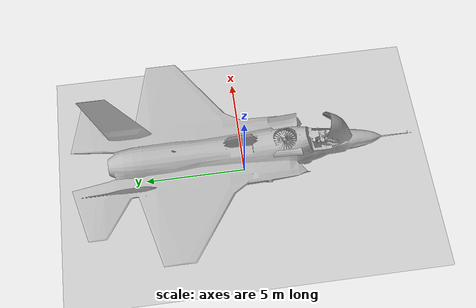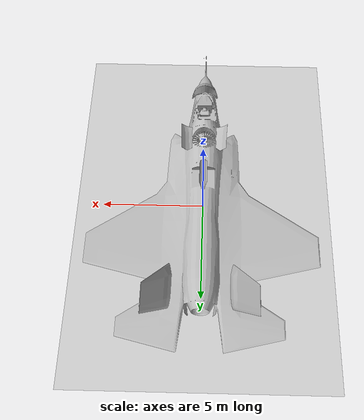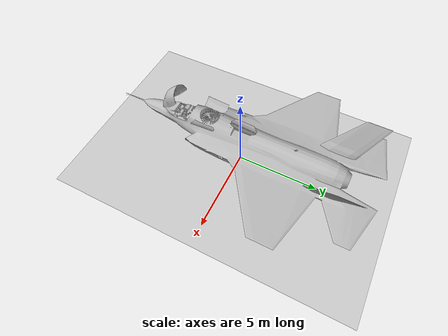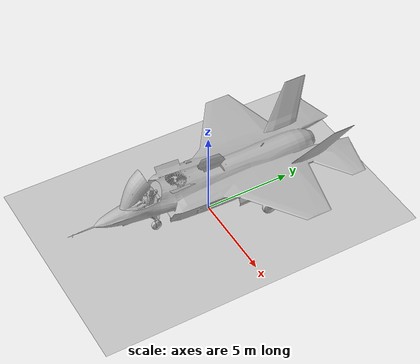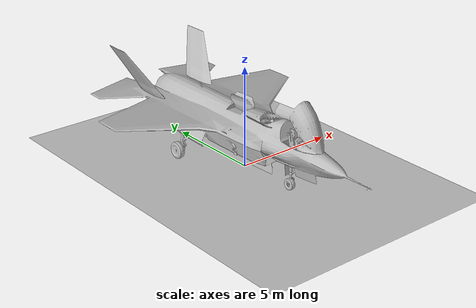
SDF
<?xml version="1.0" ?>
<sdf version="1.5">
  <world name="default">
    <!-- A global light source -->
    <include>
      <uri>model://sun</uri>
    </include>
    <!-- A ground plane -->
    <include>
      <uri>model://ground_plane</uri>
    </include>
    <include>
      <uri>model://ground_plane</uri>
    </include>
    <include>
      <uri>model://x35</uri>
      <pose>0 0 0 0 0 0</pose>
    </include>

    <scene>
      <ambient>0.01 0.01 0.01 1.0</ambient>
      <sky>
        <clouds>
          <speed>12</speed>
        </clouds>
      </sky>
      <shadows>1</shadows>
    </scene>

    <!-- Only one ROS interface plugin is required per world, as any other plugin can connect a Gazebo
         topic to a ROS topic (or vise versa). -->
    <plugin name="ros_interface_plugin" filename="librotors_gazebo_ros_interface_plugin.so"/>

    <physics name='default_physics' default='0' type='ode'>
      <gravity>0 0 -9.8066</gravity>
      <ode>
        <solver>
          <type>quick</type>
          <iters>10</iters>
          <sor>1.3</sor>
          <use_dynamic_moi_rescaling>0</use_dynamic_moi_rescaling>
        </solver>
        <constraints>
          <cfm>0</cfm>
          <erp>0.2</erp>
          <contact_max_correcting_vel>100</contact_max_correcting_vel>
          <contact_surface_layer>0.001</contact_surface_layer>
        </constraints>
      </ode>
      <max_step_size>0.002</max_step_size>
      <real_time_factor>1</real_time_factor>
      <real_time_update_rate>500</real_time_update_rate>
      <magnetic_field>6e-06 2.3e-05 -4.2e-05</magnetic_field>
    </physics>
  </world>
</sdf>

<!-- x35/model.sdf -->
<sdf version="1.5">
<model name="x35">
  <static>true</static>
  <link name="x35_link">

  <visual name="x35">
    <pose>0 0 0 0 0 0</pose>
    <geometry>
      <mesh><uri>model://x35/meshes/x35.stl</uri><scale>0.000112 0.000112 0.000112</scale></mesh>
    </geometry>
  </visual>

  <collision name="x35">
    <pose>0 0 0 0 0 0</pose>
    <geometry>
      <mesh><uri>model://x35/meshes/x35.stl</uri><scale>0.000112 0.000112 0.000112</scale></mesh>
    </geometry>
  </collision>

  </link>
</model>
</sdf>
